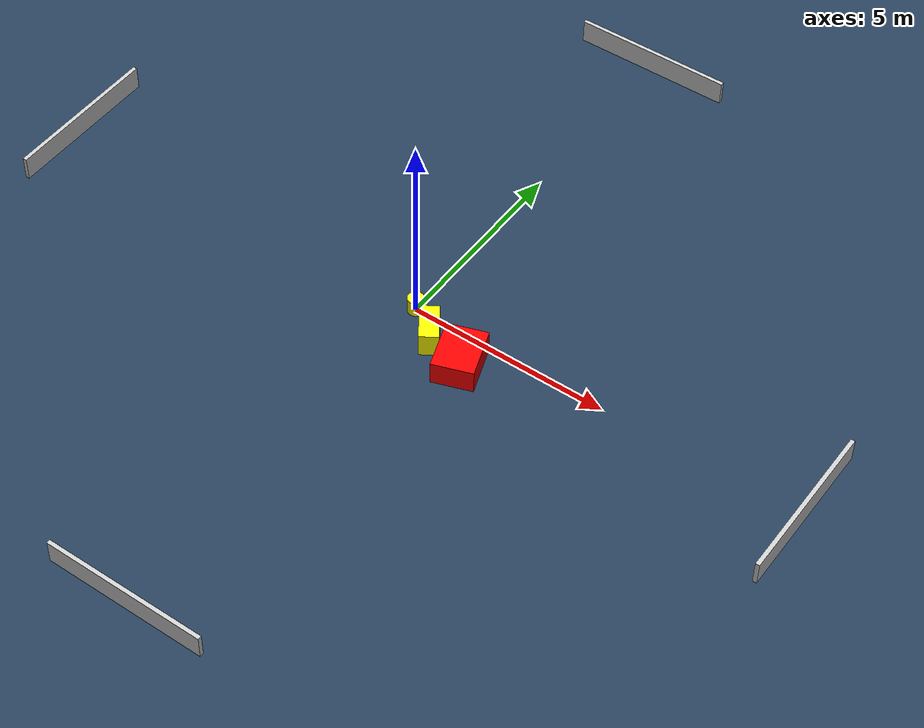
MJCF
<?xml version="1.0" ?>
<mujoco model="generated_environment">
  <option timestep="0.01" integrator="RK4" cone="elliptic"/>
  <default>
    <geom density="1"/>
  </default>
  <asset>
    <texture builtin="gradient" height="3072" name="skybox" rgb1="0.3 0.5 0.7" rgb2="0 0 0" type="skybox" width="512"/>
    <texture builtin="checker" height="300" name="groundplane" rgb1="0.2 0.3 0.4" rgb2="0.1 0.2 0.3" type="2d" width="300"/>
    <material name="groundplane" reflectance="0.2" texrepeat="5 5" texture="groundplane"/>
  </asset>
  <worldbody>
    <light dir="0 0 -1" directional="true" pos="0 0 1.5"/>
    <geom condim="3" friction="0.5 0.005 0.001" material="groundplane" name="floor" pos="0 0 0" size="0 0 0.05" type="plane"/>
    <body name="walls">
      <geom name="wall_1" condim="4" pos="-10.0 0.0 0.3" rgba="0.800000011920929 0.800000011920929 0.800000011920929 1.0" size="0.05 2.0 0.3" type="box"/>
      <geom name="wall_2" condim="4" pos="10.0 0.0 0.3" rgba="0.800000011920929 0.800000011920929 0.800000011920929 1.0" size="0.05 2.0 0.3" type="box"/>
      <geom name="wall_3" condim="4" pos="0.0 -10.0 0.3" rgba="0.800000011920929 0.800000011920929 0.800000011920929 1.0" size="2.0 0.05 0.3" type="box"/>
      <geom name="wall_4" condim="4" pos="0.0 10.0 0.3" rgba="0.800000011920929 0.800000011920929 0.800000011920929 1.0" size="2.0 0.05 0.3" type="box"/>
    </body>
    <body name="robot">
      <joint name="joint_x" type="slide" pos="0 0 0" axis="1 0 0"/>
      <joint name="joint_y" type="slide" pos="0 0 0" axis="0 1 0"/>
      <geom name="robot" type="cylinder" pos="0.0 0.0 0.2" size="0.2 0.2 0.0" mass="5.0" friction="1.0 0.005 0.0001" condim="4" rgba="1.0 1.0 0.0 1.0"/>
    </body>
    <body name="obstacle_1_movable">
      <geom name="obstacle_1_movable" condim="4" pos="0.756981361150334 -0.537321341883254 0.3" euler="0 0 214.081752414657" friction="0.0 0.005 0.001" rgba="1.0 1.0 0.0 1.0" size="0.23321950818853981 0.4688817088668468 0.3" type="box" mass="0.1"/>
      <joint type="free"/>
    </body>
    <body name="obstacle_2_static">
      <geom name="obstacle_2_static" condim="4" pos="1.766567328506583 -0.788207435734599 0.3" euler="0 0 109.23544127169681" friction="0.0 0.005 0.001" rgba="1.0 0.0 0.0 1.0" size="0.6288717938097048 0.500055379560232 0.3" type="box"/>
    </body>
  </worldbody>
  <actuator>
    <motor name="actuator_x" joint="joint_x" gear="1" ctrlrange="-1 1"/>
    <motor name="actuator_y" joint="joint_y" gear="1" ctrlrange="-1 1"/>
  </actuator>
</mujoco>
